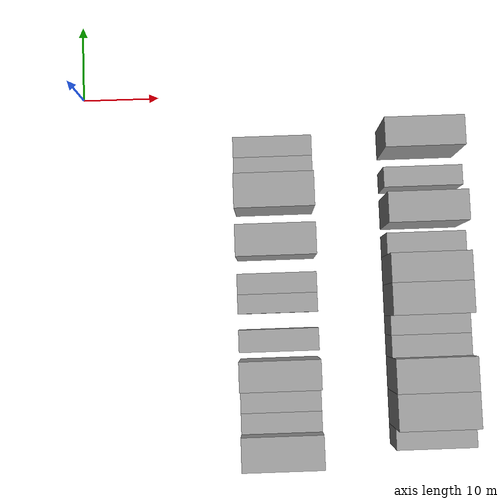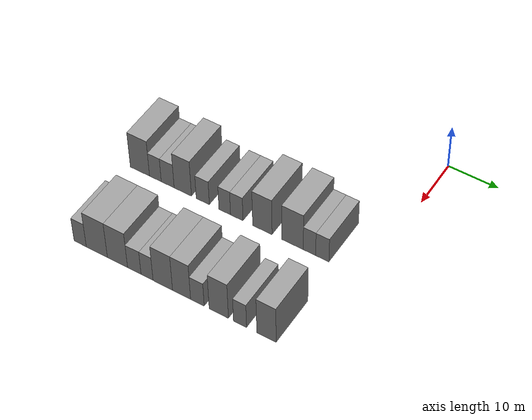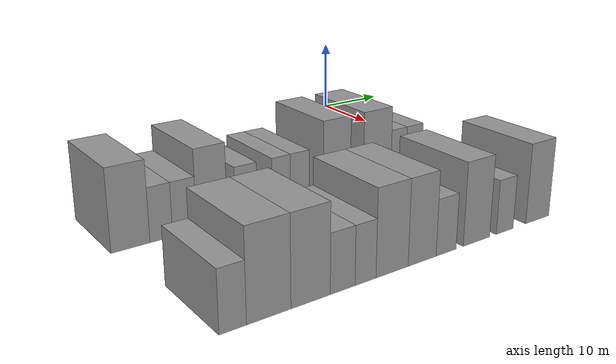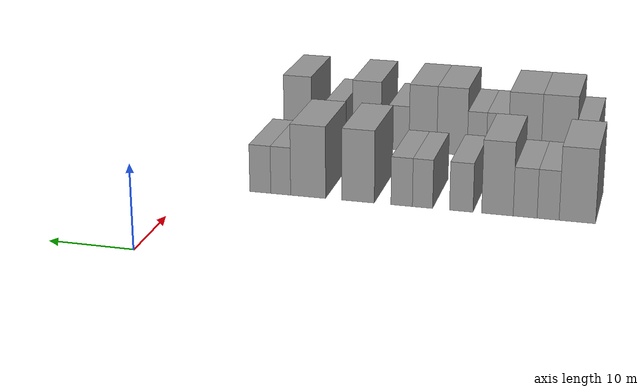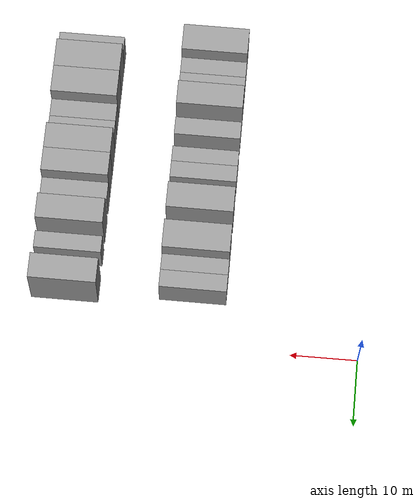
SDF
<sdf version="1.6">
 <world name="default">
  <model name="building_32">
   <static>1</static>
   <pose>25.0000 -46.1726 0 0.000000 0.000000 0.000000</pose>
   <link name="link">
    <pose>0 0 4.50 0 0 0</pose>
    <collision name="collision"><geometry><box><size>10.0000 4.1452 9.0000</size></box></geometry></collision>
    <visual name="visual">
     <cast_shadows>0</cast_shadows>
     <geometry><box><size>10.0000 4.1452 9.0000</size></box></geometry>
     <material>
      <script>
       <uri>model://grey_wall/materials/scripts</uri>
       <uri>model://grey_wall/materials/textures</uri>
       <name>vrc/grey_wall</name>
      </script>
     </material>
    </visual>
   </link>
  </model>
  <model name="building_33">
   <static>1</static>
   <pose>25.0000 -42.8360 0 0.000000 0.000000 0.000000</pose>
   <link name="link">
    <pose>0 0 3.00 0 0 0</pose>
    <collision name="collision"><geometry><box><size>10.0000 2.5281 6.0000</size></box></geometry></collision>
    <visual name="visual">
     <cast_shadows>0</cast_shadows>
     <geometry><box><size>10.0000 2.5281 6.0000</size></box></geometry>
     <material>
      <script>
       <uri>model://grey_wall/materials/scripts</uri>
       <uri>model://grey_wall/materials/textures</uri>
       <name>vrc/grey_wall</name>
      </script>
     </material>
    </visual>
   </link>
  </model>
  <model name="building_34">
   <static>1</static>
   <pose>25.0000 -40.1907 0 0.000000 0.000000 0.000000</pose>
   <link name="link">
    <pose>0 0 3.00 0 0 0</pose>
    <collision name="collision"><geometry><box><size>10.0000 2.7624 6.0000</size></box></geometry></collision>
    <visual name="visual">
     <cast_shadows>0</cast_shadows>
     <geometry><box><size>10.0000 2.7624 6.0000</size></box></geometry>
     <material>
      <script>
       <uri>model://grey_wall/materials/scripts</uri>
       <uri>model://grey_wall/materials/textures</uri>
       <name>vrc/grey_wall</name>
      </script>
     </material>
    </visual>
   </link>
  </model>
  <model name="building_35">
   <static>1</static>
   <pose>25.0000 -36.9668 0 0.000000 0.000000 0.000000</pose>
   <link name="link">
    <pose>0 0 4.50 0 0 0</pose>
    <collision name="collision"><geometry><box><size>10.0000 3.6854 9.0000</size></box></geometry></collision>
    <visual name="visual">
     <cast_shadows>0</cast_shadows>
     <geometry><box><size>10.0000 3.6854 9.0000</size></box></geometry>
     <material>
      <script>
       <uri>model://grey_wall/materials/scripts</uri>
       <uri>model://grey_wall/materials/textures</uri>
       <name>vrc/grey_wall</name>
      </script>
     </material>
    </visual>
   </link>
  </model>
  <model name="building_36">
   <static>1</static>
   <pose>25.0000 -32.7371 0 0.000000 0.000000 0.000000</pose>
   <link name="link">
    <pose>0 0 3.00 0 0 0</pose>
    <collision name="collision"><geometry><box><size>10.0000 2.7739 6.0000</size></box></geometry></collision>
    <visual name="visual">
     <cast_shadows>0</cast_shadows>
     <geometry><box><size>10.0000 2.7739 6.0000</size></box></geometry>
     <material>
      <script>
       <uri>model://grey_wall/materials/scripts</uri>
       <uri>model://grey_wall/materials/textures</uri>
       <name>vrc/grey_wall</name>
      </script>
     </material>
    </visual>
   </link>
  </model>
  <model name="building_37">
   <static>1</static>
   <pose>25.0000 -28.1417 0 0.000000 0.000000 0.000000</pose>
   <link name="link">
    <pose>0 0 3.00 0 0 0</pose>
    <collision name="collision"><geometry><box><size>10.0000 2.4168 6.0000</size></box></geometry></collision>
    <visual name="visual">
     <cast_shadows>0</cast_shadows>
     <geometry><box><size>10.0000 2.4168 6.0000</size></box></geometry>
     <material>
      <script>
       <uri>model://grey_wall/materials/scripts</uri>
       <uri>model://grey_wall/materials/textures</uri>
       <name>vrc/grey_wall</name>
      </script>
     </material>
    </visual>
   </link>
  </model>
  <model name="building_38">
   <static>1</static>
   <pose>25.0000 -25.6398 0 0.000000 0.000000 0.000000</pose>
   <link name="link">
    <pose>0 0 3.00 0 0 0</pose>
    <collision name="collision"><geometry><box><size>10.0000 2.5871 6.0000</size></box></geometry></collision>
    <visual name="visual">
     <cast_shadows>0</cast_shadows>
     <geometry><box><size>10.0000 2.5871 6.0000</size></box></geometry>
     <material>
      <script>
       <uri>model://grey_wall/materials/scripts</uri>
       <uri>model://grey_wall/materials/textures</uri>
       <name>vrc/grey_wall</name>
      </script>
     </material>
    </visual>
   </link>
  </model>
  <model name="building_39">
   <static>1</static>
   <pose>25.0000 -20.3670 0 0.000000 0.000000 0.000000</pose>
   <link name="link">
    <pose>0 0 4.50 0 0 0</pose>
    <collision name="collision"><geometry><box><size>10.0000 3.9584 9.0000</size></box></geometry></collision>
    <visual name="visual">
     <cast_shadows>0</cast_shadows>
     <geometry><box><size>10.0000 3.9584 9.0000</size></box></geometry>
     <material>
      <script>
       <uri>model://grey_wall/materials/scripts</uri>
       <uri>model://grey_wall/materials/textures</uri>
       <name>vrc/grey_wall</name>
      </script>
     </material>
    </visual>
   </link>
  </model>
  <model name="building_40">
   <static>1</static>
   <pose>25.0000 -14.2242 0 0.000000 0.000000 0.000000</pose>
   <link name="link">
    <pose>0 0 4.50 0 0 0</pose>
    <collision name="collision"><geometry><box><size>10.0000 4.3272 9.0000</size></box></geometry></collision>
    <visual name="visual">
     <cast_shadows>0</cast_shadows>
     <geometry><box><size>10.0000 4.3272 9.0000</size></box></geometry>
     <material>
      <script>
       <uri>model://grey_wall/materials/scripts</uri>
       <uri>model://grey_wall/materials/textures</uri>
       <name>vrc/grey_wall</name>
      </script>
     </material>
    </visual>
   </link>
  </model>
  <model name="building_41">
   <static>1</static>
   <pose>25.0000 -10.8219 0 0.000000 0.000000 0.000000</pose>
   <link name="link">
    <pose>0 0 3.00 0 0 0</pose>
    <collision name="collision"><geometry><box><size>10.0000 2.4773 6.0000</size></box></geometry></collision>
    <visual name="visual">
     <cast_shadows>0</cast_shadows>
     <geometry><box><size>10.0000 2.4773 6.0000</size></box></geometry>
     <material>
      <script>
       <uri>model://grey_wall/materials/scripts</uri>
       <uri>model://grey_wall/materials/textures</uri>
       <name>vrc/grey_wall</name>
      </script>
     </material>
    </visual>
   </link>
  </model>
  <model name="building_42">
   <static>1</static>
   <pose>25.0000 -8.2624 0 0.000000 0.000000 0.000000</pose>
   <link name="link">
    <pose>0 0 3.00 0 0 0</pose>
    <collision name="collision"><geometry><box><size>10.0000 2.6418 6.0000</size></box></geometry></collision>
    <visual name="visual">
     <cast_shadows>0</cast_shadows>
     <geometry><box><size>10.0000 2.6418 6.0000</size></box></geometry>
     <material>
      <script>
       <uri>model://grey_wall/materials/scripts</uri>
       <uri>model://grey_wall/materials/textures</uri>
       <name>vrc/grey_wall</name>
      </script>
     </material>
    </visual>
   </link>
  </model>
  <model name="building_126">
   <static>1</static>
   <pose>44.0000 -45.3717 0 0.000000 0.000000 0.000000</pose>
   <link name="link">
    <pose>0 0 3.00 0 0 0</pose>
    <collision name="collision"><geometry><box><size>10.0000 2.5995 6.0000</size></box></geometry></collision>
    <visual name="visual">
     <cast_shadows>0</cast_shadows>
     <geometry><box><size>10.0000 2.5995 6.0000</size></box></geometry>
     <material>
      <script>
       <uri>model://grey_wall/materials/scripts</uri>
       <uri>model://grey_wall/materials/textures</uri>
       <name>vrc/grey_wall</name>
      </script>
     </material>
    </visual>
   </link>
  </model>
  <model name="building_127">
   <static>1</static>
   <pose>44.0000 -41.8496 0 0.000000 0.000000 0.000000</pose>
   <link name="link">
    <pose>0 0 4.50 0 0 0</pose>
    <collision name="collision"><geometry><box><size>10.0000 4.4447 9.0000</size></box></geometry></collision>
    <visual name="visual">
     <cast_shadows>0</cast_shadows>
     <geometry><box><size>10.0000 4.4447 9.0000</size></box></geometry>
     <material>
      <script>
       <uri>model://grey_wall/materials/scripts</uri>
       <uri>model://grey_wall/materials/textures</uri>
       <name>vrc/grey_wall</name>
      </script>
     </material>
    </visual>
   </link>
  </model>
  <model name="building_128">
   <static>1</static>
   <pose>44.0000 -37.5254 0 0.000000 0.000000 0.000000</pose>
   <link name="link">
    <pose>0 0 4.50 0 0 0</pose>
    <collision name="collision"><geometry><box><size>10.0000 4.2037 9.0000</size></box></geometry></collision>
    <visual name="visual">
     <cast_shadows>0</cast_shadows>
     <geometry><box><size>10.0000 4.2037 9.0000</size></box></geometry>
     <material>
      <script>
       <uri>model://grey_wall/materials/scripts</uri>
       <uri>model://grey_wall/materials/textures</uri>
       <name>vrc/grey_wall</name>
      </script>
     </material>
    </visual>
   </link>
  </model>
  <model name="building_129">
   <static>1</static>
   <pose>44.0000 -34.0265 0 0.000000 0.000000 0.000000</pose>
   <link name="link">
    <pose>0 0 3.00 0 0 0</pose>
    <collision name="collision"><geometry><box><size>10.0000 2.7940 6.0000</size></box></geometry></collision>
    <visual name="visual">
     <cast_shadows>0</cast_shadows>
     <geometry><box><size>10.0000 2.7940 6.0000</size></box></geometry>
     <material>
      <script>
       <uri>model://grey_wall/materials/scripts</uri>
       <uri>model://grey_wall/materials/textures</uri>
       <name>vrc/grey_wall</name>
      </script>
     </material>
    </visual>
   </link>
  </model>
  <model name="building_130">
   <static>1</static>
   <pose>44.0000 -31.3996 0 0.000000 0.000000 0.000000</pose>
   <link name="link">
    <pose>0 0 3.00 0 0 0</pose>
    <collision name="collision"><geometry><box><size>10.0000 2.4597 6.0000</size></box></geometry></collision>
    <visual name="visual">
     <cast_shadows>0</cast_shadows>
     <geometry><box><size>10.0000 2.4597 6.0000</size></box></geometry>
     <material>
      <script>
       <uri>model://grey_wall/materials/scripts</uri>
       <uri>model://grey_wall/materials/textures</uri>
       <name>vrc/grey_wall</name>
      </script>
     </material>
    </visual>
   </link>
  </model>
  <model name="building_131">
   <static>1</static>
   <pose>44.0000 -28.1816 0 0.000000 0.000000 0.000000</pose>
   <link name="link">
    <pose>0 0 4.50 0 0 0</pose>
    <collision name="collision"><geometry><box><size>10.0000 3.9764 9.0000</size></box></geometry></collision>
    <visual name="visual">
     <cast_shadows>0</cast_shadows>
     <geometry><box><size>10.0000 3.9764 9.0000</size></box></geometry>
     <material>
      <script>
       <uri>model://grey_wall/materials/scripts</uri>
       <uri>model://grey_wall/materials/textures</uri>
       <name>vrc/grey_wall</name>
      </script>
     </material>
    </visual>
   </link>
  </model>
  <model name="building_132">
   <static>1</static>
   <pose>44.0000 -24.3692 0 0.000000 0.000000 0.000000</pose>
   <link name="link">
    <pose>0 0 4.50 0 0 0</pose>
    <collision name="collision"><geometry><box><size>10.0000 3.6483 9.0000</size></box></geometry></collision>
    <visual name="visual">
     <cast_shadows>0</cast_shadows>
     <geometry><box><size>10.0000 3.6483 9.0000</size></box></geometry>
     <material>
      <script>
       <uri>model://grey_wall/materials/scripts</uri>
       <uri>model://grey_wall/materials/textures</uri>
       <name>vrc/grey_wall</name>
      </script>
     </material>
    </visual>
   </link>
  </model>
  <model name="building_133">
   <static>1</static>
   <pose>44.0000 -21.1826 0 0.000000 0.000000 0.000000</pose>
   <link name="link">
    <pose>0 0 3.00 0 0 0</pose>
    <collision name="collision"><geometry><box><size>10.0000 2.7250 6.0000</size></box></geometry></collision>
    <visual name="visual">
     <cast_shadows>0</cast_shadows>
     <geometry><box><size>10.0000 2.7250 6.0000</size></box></geometry>
     <material>
      <script>
       <uri>model://grey_wall/materials/scripts</uri>
       <uri>model://grey_wall/materials/textures</uri>
       <name>vrc/grey_wall</name>
      </script>
     </material>
    </visual>
   </link>
  </model>
  <model name="building_134">
   <static>1</static>
   <pose>44.0000 -16.9088 0 0.000000 0.000000 0.000000</pose>
   <link name="link">
    <pose>0 0 4.50 0 0 0</pose>
    <collision name="collision"><geometry><box><size>10.0000 3.8226 9.0000</size></box></geometry></collision>
    <visual name="visual">
     <cast_shadows>0</cast_shadows>
     <geometry><box><size>10.0000 3.8226 9.0000</size></box></geometry>
     <material>
      <script>
       <uri>model://grey_wall/materials/scripts</uri>
       <uri>model://grey_wall/materials/textures</uri>
       <name>vrc/grey_wall</name>
      </script>
     </material>
    </visual>
   </link>
  </model>
  <model name="building_135">
   <static>1</static>
   <pose>44.0000 -12.7124 0 0.000000 0.000000 0.000000</pose>
   <link name="link">
    <pose>0 0 3.00 0 0 0</pose>
    <collision name="collision"><geometry><box><size>10.0000 2.5702 6.0000</size></box></geometry></collision>
    <visual name="visual">
     <cast_shadows>0</cast_shadows>
     <geometry><box><size>10.0000 2.5702 6.0000</size></box></geometry>
     <material>
      <script>
       <uri>model://grey_wall/materials/scripts</uri>
       <uri>model://grey_wall/materials/textures</uri>
       <name>vrc/grey_wall</name>
      </script>
     </material>
    </visual>
   </link>
  </model>
  <model name="building_136">
   <static>1</static>
   <pose>44.0000 -7.5453 0 0.000000 0.000000 0.000000</pose>
   <link name="link">
    <pose>0 0 4.50 0 0 0</pose>
    <collision name="collision"><geometry><box><size>10.0000 3.7639 9.0000</size></box></geometry></collision>
    <visual name="visual">
     <cast_shadows>0</cast_shadows>
     <geometry><box><size>10.0000 3.7639 9.0000</size></box></geometry>
     <material>
      <script>
       <uri>model://grey_wall/materials/scripts</uri>
       <uri>model://grey_wall/materials/textures</uri>
       <name>vrc/grey_wall</name>
      </script>
     </material>
    </visual>
   </link>
  </model>
 </world>
</sdf>
